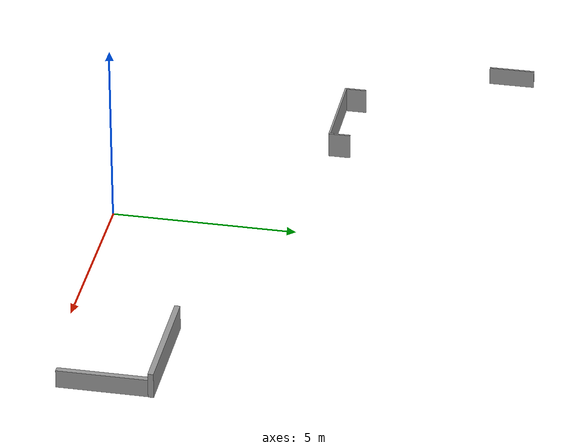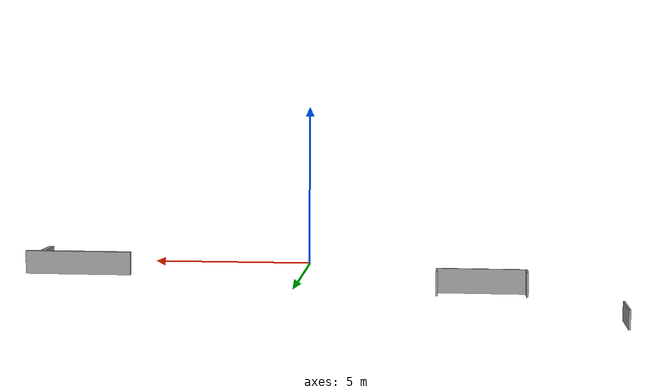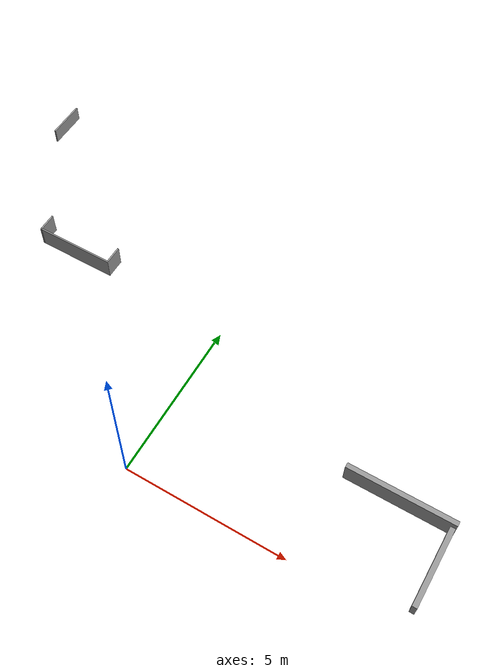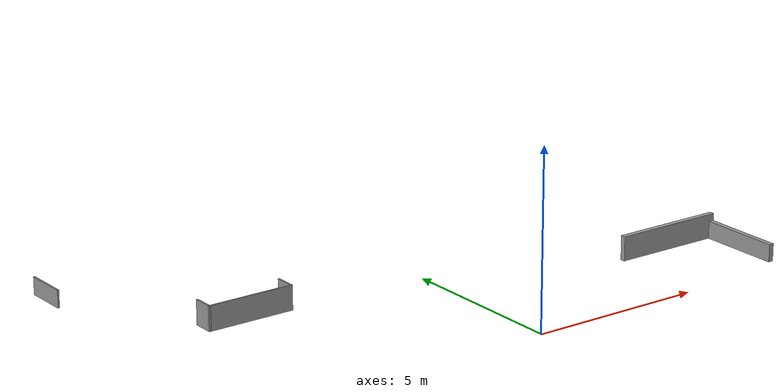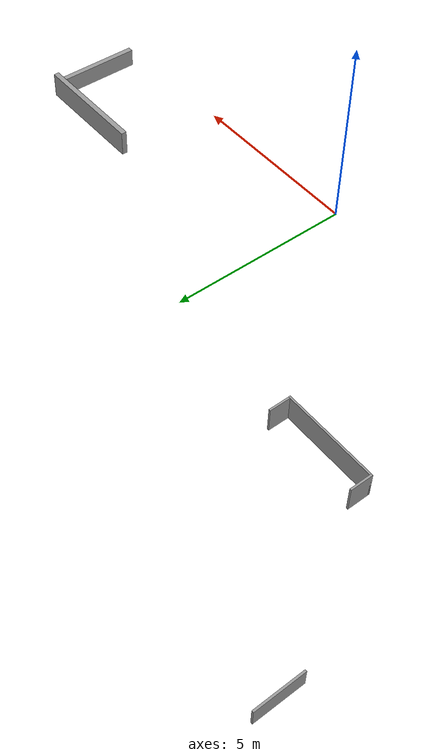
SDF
<?xml version='1.0'?>
<sdf version='1.7'>
  <model name='add_wall4'>
    <pose>-0.206571 5.057 0 0 -0 0</pose>
    <link name='Wall_11'>
      <collision name='Wall_11_Collision'>
        <geometry>
          <box>
            <size>0.6 0.05 0.7</size>
          </box>
        </geometry>
        <pose>0 0 0.35 0 -0 0</pose>
      </collision>
      <visual name='Wall_11_Visual'>
        <pose>0 0 0.35 0 -0 0</pose>
        <geometry>
          <box>
            <size>0.6 0.05 0.7</size>
          </box>
        </geometry>
        <material>
          <script>
            <uri>file://media/materials/scripts/gazebo.material</uri>
            <name>Gazebo/Grey</name>
          </script>
          <ambient>1 1 1 1</ambient>
        </material>
        <meta>
          <layer>0</layer>
        </meta>
      </visual>
      <pose>-6.39343 0.368 0 0 -0 1.5708</pose>
    </link>
    <link name='Wall_14'>
      <collision name='Wall_14_Collision'>
        <geometry>
          <box>
            <size>3.25 0.15 0.7</size>
          </box>
        </geometry>
        <pose>0 0 0.35 0 -0 0</pose>
      </collision>
      <visual name='Wall_14_Visual'>
        <pose>0 0 0.35 0 -0 0</pose>
        <geometry>
          <box>
            <size>3.25 0.15 0.7</size>
          </box>
        </geometry>
        <material>
          <script>
            <uri>file://media/materials/scripts/gazebo.material</uri>
            <name>Gazebo/Grey</name>
          </script>
          <ambient>1 1 1 1</ambient>
        </material>
        <meta>
          <layer>0</layer>
        </meta>
      </visual>
      <pose>7.03857 -2.17847 0 0 -0 0</pose>
    </link>
    <link name='Wall_16'>
      <collision name='Wall_16_Collision'>
        <geometry>
          <box>
            <size>2.5 0.15 0.5</size>
          </box>
        </geometry>
        <pose>0 0 0.25 0 -0 0</pose>
      </collision>
      <visual name='Wall_16_Visual'>
        <pose>0 0 0.25 0 -0 0</pose>
        <geometry>
          <box>
            <size>2.5 0.15 0.5</size>
          </box>
        </geometry>
        <material>
          <script>
            <uri>file://media/materials/scripts/gazebo.material</uri>
            <name>Gazebo/Grey</name>
          </script>
          <ambient>1 1 1 1</ambient>
        </material>
        <meta>
          <layer>0</layer>
        </meta>
      </visual>
      <pose>8.57257 -3.394 0 0 -0 1.5708</pose>
    </link>
    <link name='Wall_18'>
      <collision name='Wall_18_Collision'>
        <geometry>
          <box>
            <size>1.25 0.05 0.5</size>
          </box>
        </geometry>
        <pose>0 0 0.25 0 -0 0</pose>
      </collision>
      <visual name='Wall_18_Visual'>
        <pose>0 0 0.25 0 -0 0</pose>
        <geometry>
          <box>
            <size>1.25 0.05 0.5</size>
          </box>
        </geometry>
        <material>
          <script>
            <uri>file://media/materials/scripts/gazebo.material</uri>
            <name>Gazebo/Grey</name>
          </script>
          <ambient>1 1 1 1</ambient>
        </material>
        <meta>
          <layer>0</layer>
        </meta>
      </visual>
      <pose>-8.63857 4.432 0 0 -0 1.5708</pose>
    </link>
    <link name='Wall_7'>
      <collision name='Wall_7_Collision'>
        <geometry>
          <box>
            <size>2.55 0.05 0.7</size>
          </box>
        </geometry>
        <pose>0 0 0.35 0 -0 0</pose>
      </collision>
      <visual name='Wall_7_Visual'>
        <pose>0 0 0.35 0 -0 0</pose>
        <geometry>
          <box>
            <size>2.55 0.05 0.7</size>
          </box>
        </geometry>
        <material>
          <script>
            <uri>file://media/materials/scripts/gazebo.material</uri>
            <name>Gazebo/Grey</name>
          </script>
          <ambient>1 1 1 1</ambient>
        </material>
        <meta>
          <layer>0</layer>
        </meta>
      </visual>
      <pose>-5.14343 0.093 0 0 -0 3.14159</pose>
    </link>
    <link name='Wall_9'>
      <collision name='Wall_9_Collision'>
        <geometry>
          <box>
            <size>0.6 0.05 0.7</size>
          </box>
        </geometry>
        <pose>0 0 0.35 0 -0 0</pose>
      </collision>
      <visual name='Wall_9_Visual'>
        <pose>0 0 0.35 0 -0 0</pose>
        <geometry>
          <box>
            <size>0.6 0.05 0.7</size>
          </box>
        </geometry>
        <material>
          <script>
            <uri>file://media/materials/scripts/gazebo.material</uri>
            <name>Gazebo/Grey</name>
          </script>
          <ambient>1 1 1 1</ambient>
        </material>
        <meta>
          <layer>0</layer>
        </meta>
      </visual>
      <pose>-3.89343 0.368 0 0 -0 1.5708</pose>
    </link>
    <static>1</static>
  </model>
</sdf>
